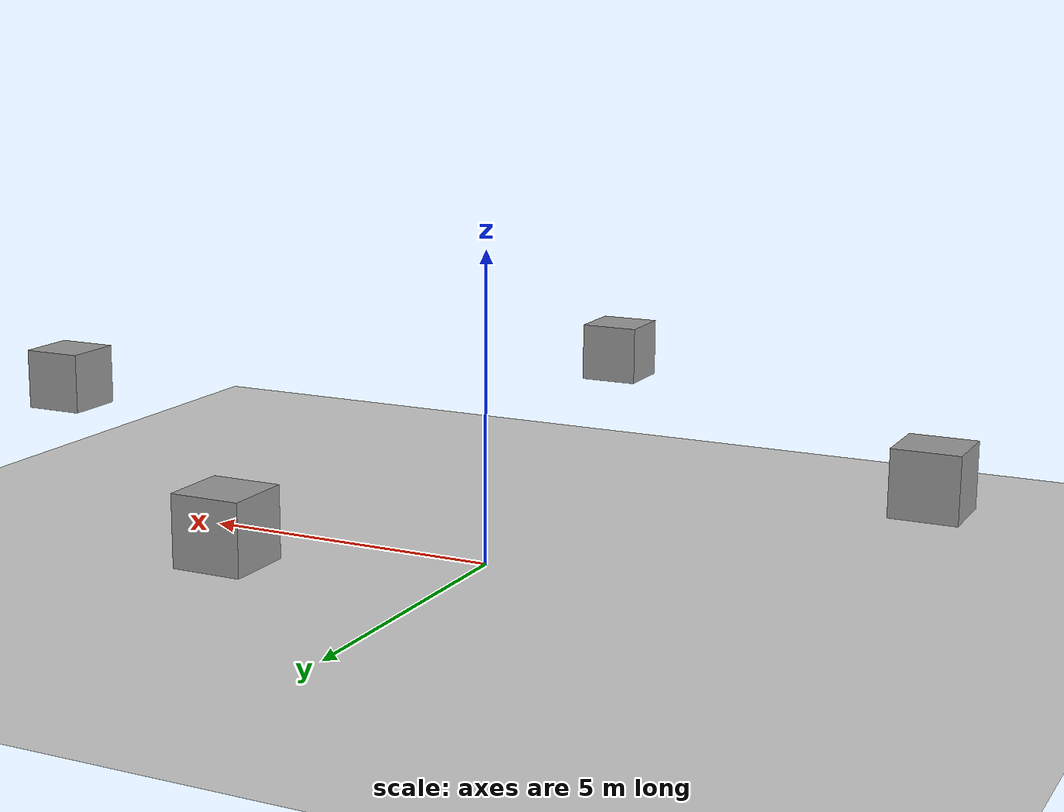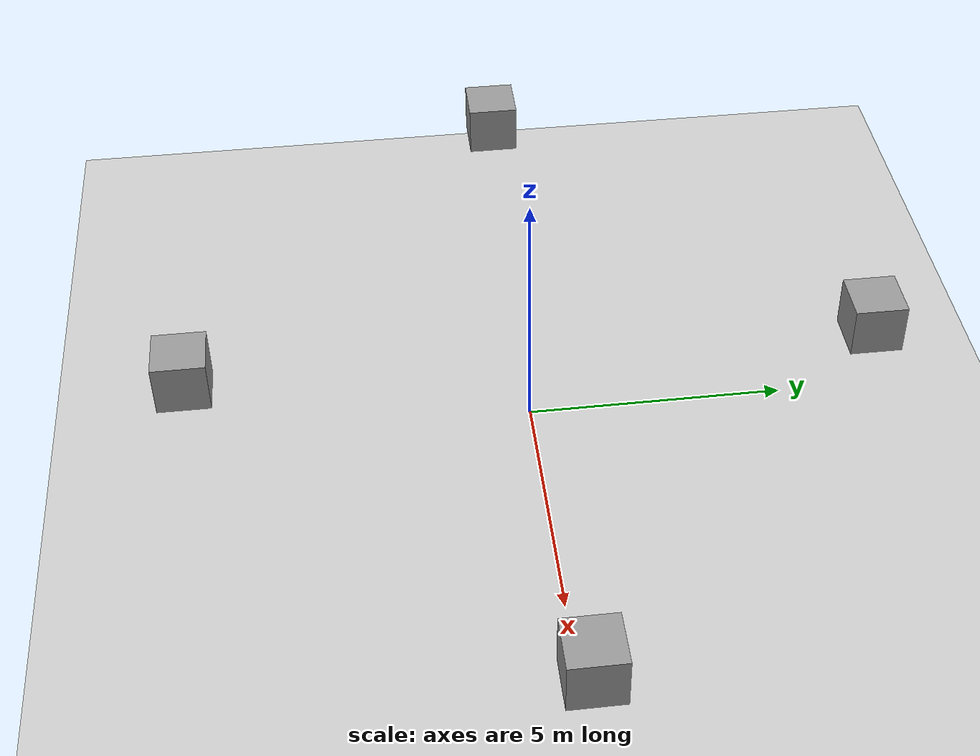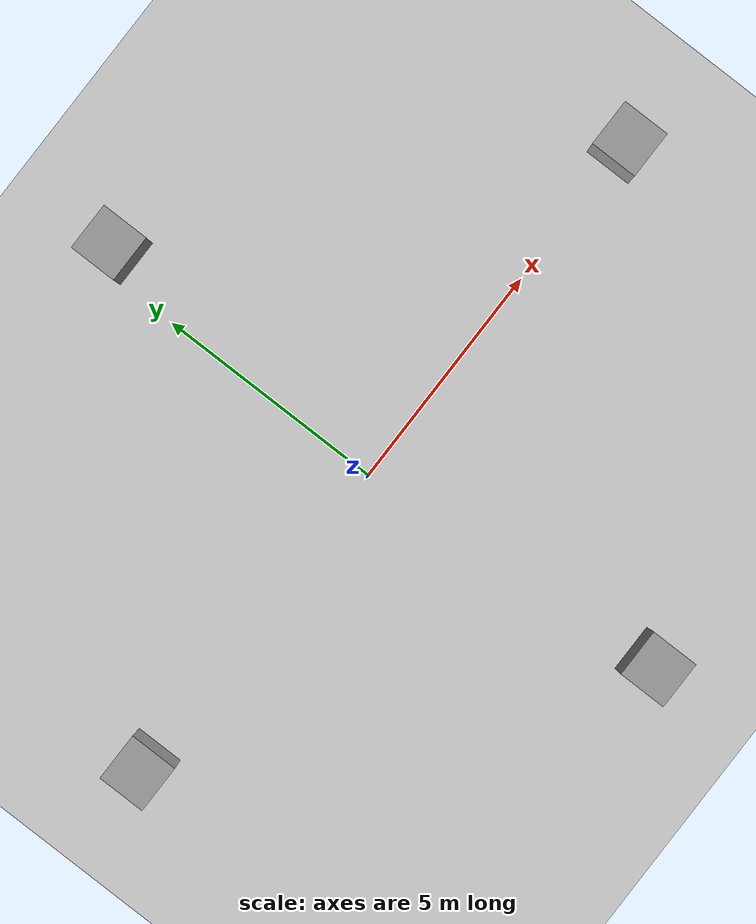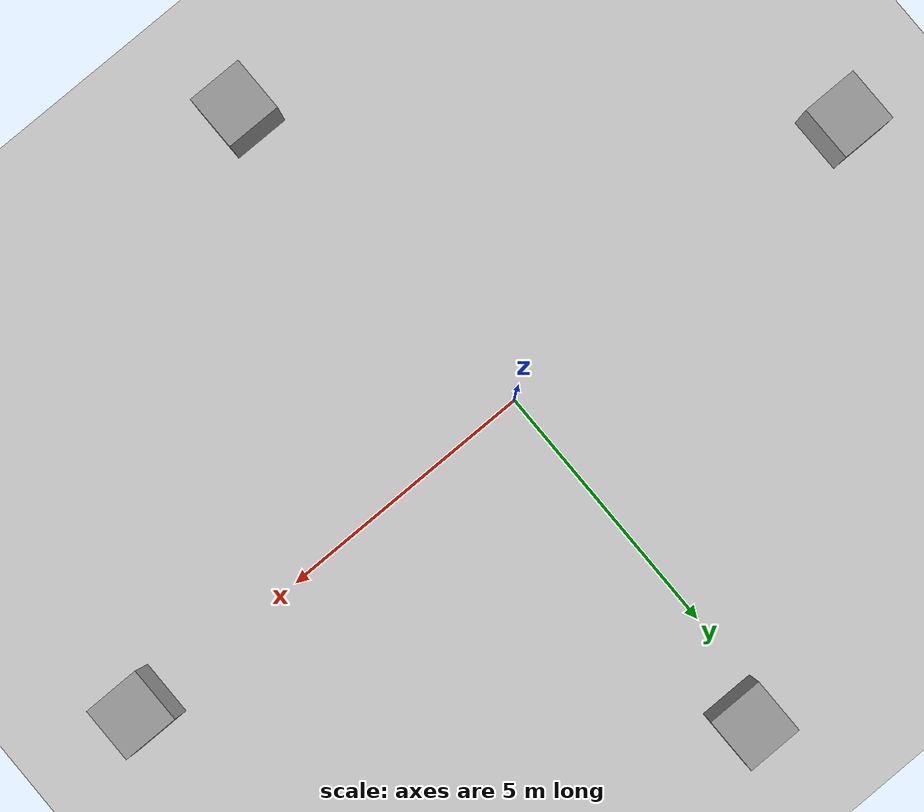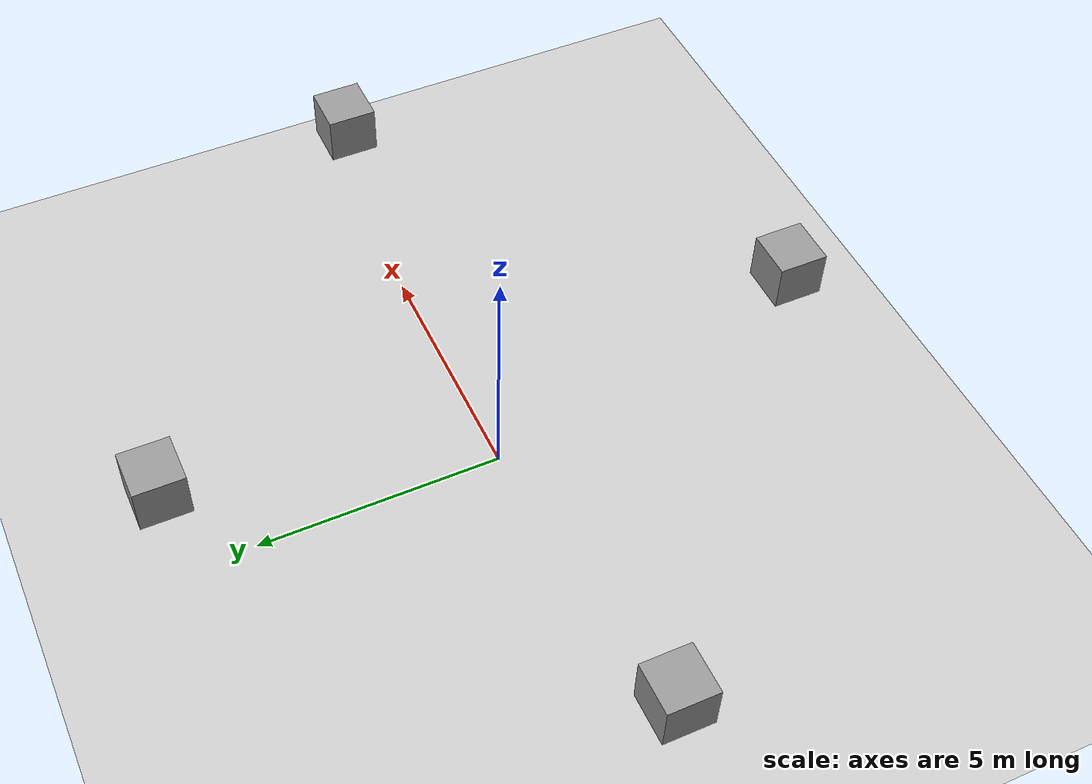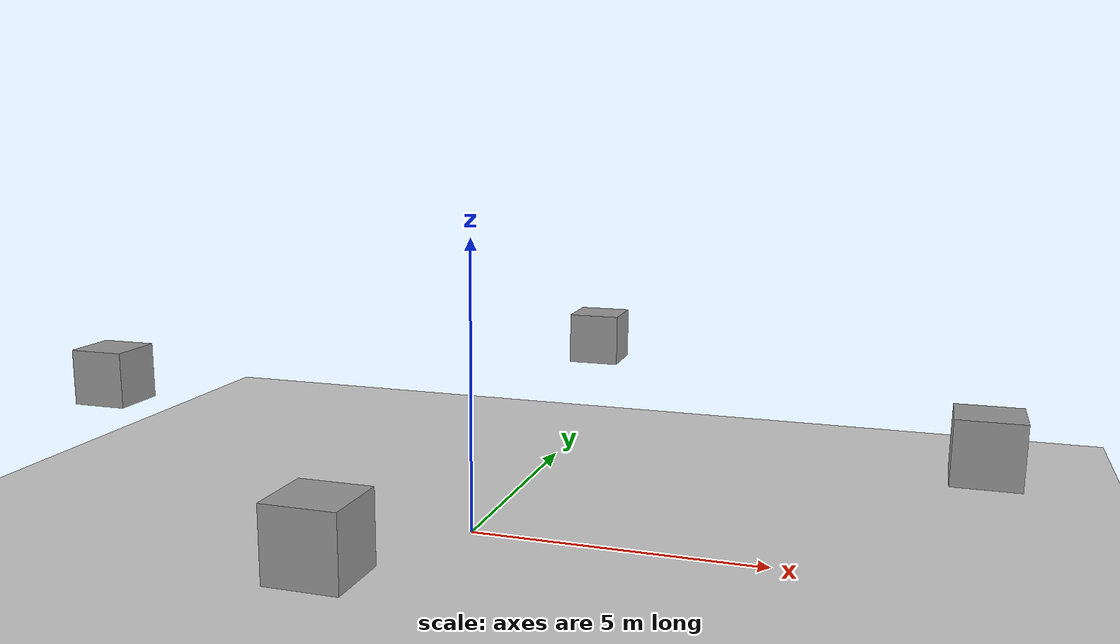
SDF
<sdf version='1.7'>
  <world name='default'>
    <!-- Restaurant Challenge 用の最小ワールド (壁なし・広い空間)        -->
    <!-- 机・椅子は configs/tasks/restaurant/placement.yaml の furniture:    -->
    <!-- セクションで「本物のメッシュ USD」として置く (furniture_spawn.py)。  -->
    <!-- このワールドは「床」だけを用意し、外壁は置かない (広い空間で使う)。   -->
    <!-- の広い床になる。robot/furniture/people は placement.yaml で配置する。 -->
    <light name='sun' type='directional'>
      <cast_shadows>1</cast_shadows>
      <pose>0 0 10 0 -0 0</pose>
      <diffuse>0.8 0.8 0.8 1</diffuse>
      <specular>0.2 0.2 0.2 1</specular>
      <attenuation>
        <range>1000</range>
        <constant>0.9</constant>
        <linear>0.01</linear>
        <quadratic>0.001</quadratic>
      </attenuation>
      <direction>-0.5 0.1 -0.9</direction>
      <spot>
        <inner_angle>0</inner_angle>
        <outer_angle>0</outer_angle>
        <falloff>0</falloff>
      </spot>
    </light>
    <model name='ground_plane'>
      <static>1</static>
      <link name='link'>
        <collision name='collision'>
          <geometry>
            <plane>
              <normal>0 0 1</normal>
              <size>100 100</size>
            </plane>
          </geometry>
          <surface>
            <contact>
              <collide_bitmask>65535</collide_bitmask>
              <ode/>
            </contact>
            <friction>
              <ode>
                <mu>100</mu>
                <mu2>50</mu2>
              </ode>
              <torsional>
                <ode/>
              </torsional>
            </friction>
            <bounce/>
          </surface>
          <max_contacts>10</max_contacts>
        </collision>
        <visual name='visual'>
          <cast_shadows>0</cast_shadows>
          <geometry>
            <plane>
              <normal>0 0 1</normal>
              <size>100 100</size>
            </plane>
          </geometry>
          <material>
            <script>
              <uri>file://media/materials/scripts/gazebo.material</uri>
              <name>Gazebo/Grey</name>
            </script>
          </material>
        </visual>
        <self_collide>0</self_collide>
        <enable_wind>0</enable_wind>
        <kinematic>0</kinematic>
      </link>
    </model>
    <gravity>0 0 -9.8</gravity>
    <magnetic_field>6e-06 2.3e-05 -4.2e-05</magnetic_field>
    <atmosphere type='adiabatic'/>
    <physics type='ode'>
      <max_step_size>0.001</max_step_size>
      <real_time_factor>1</real_time_factor>
      <real_time_update_rate>1000</real_time_update_rate>
    </physics>
    <scene>
      <ambient>0.4 0.4 0.4 1</ambient>
      <background>0.7 0.7 0.7 1</background>
      <shadows>1</shadows>
    </scene>
    <wind/>
    <spherical_coordinates>
      <surface_model>EARTH_WGS84</surface_model>
      <latitude_deg>0</latitude_deg>
      <longitude_deg>0</longitude_deg>
      <elevation>0</elevation>
      <heading_deg>0</heading_deg>
    </spherical_coordinates>
    <gui fullscreen='0'>
      <camera name='user_camera'>
        <pose>-3.0 0.0 6.0 0 1.2 0</pose>
        <view_controller>orbit</view_controller>
        <projection_type>perspective</projection_type>
      </camera>
    </gui>

    <!-- 外壁 (高さ4.5m,厚さ0.1m)。自己位置推定用に4辺を囲う。部屋: X=-7〜8, Y=-6.5〜6.5。 -->
    <!-- 高さを変えるとき: pose の3番目(中心Z=高さの半分)と scale の3番目(高さ)を一緒に直す。 -->
    <include><uri>model://unit_box</uri><name>wall_north</name><pose>0.5 6.5 2.25 0 0 0</pose><scale>15.0 0.1 4.5</scale></include>
    <include><uri>model://unit_box</uri><name>wall_south</name><pose>0.5 -6.5 2.25 0 0 0</pose><scale>15.0 0.1 4.5</scale></include>
    <include><uri>model://unit_box</uri><name>wall_east</name><pose>8.0 0.0 2.25 0 0 0</pose><scale>0.1 13.0 4.5</scale></include>
    <include><uri>model://unit_box</uri><name>wall_west</name><pose>-7.0 0.0 2.25 0 0 0</pose><scale>0.1 13.0 4.5</scale></include>
  </world>
</sdf>

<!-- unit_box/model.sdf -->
<sdf version='1.7'>
  <model name='unit_box'>
    <link name='link'>
      <inertial>
        <mass>1</mass>
        <inertia>
          <ixx>0.166667</ixx>
          <ixy>0</ixy>
          <ixz>0</ixz>
          <iyy>0.166667</iyy>
          <iyz>0</iyz>
          <izz>0.166667</izz>
        </inertia>
        <pose>0 0 0 0 -0 0</pose>
      </inertial>
      <self_collide>0</self_collide>
      <enable_wind>0</enable_wind>
      <pose>0 0 0 0 -0 0</pose>
      <gravity>1</gravity>
      <kinematic>0</kinematic>
      <visual name='visual'>
        <geometry>
          <box>
            <size>1 1 1</size>
          </box>
        </geometry>
        <material>
          <script>
            <name>Gazebo/Grey</name>
            <uri>file://media/materials/scripts/gazebo.material</uri>
          </script>
          <shader type='pixel'>
            <normal_map>__default__</normal_map>
          </shader>
          <ambient>0.8 0.8 0.8 1</ambient>
          <diffuse>0.7 0.7 0.7 1</diffuse>
          <specular>0.01 0.01 0.01 1</specular>
          <emissive>0 0 0 1</emissive>
        </material>
        <pose>0 0 0 0 -0 0</pose>
        <transparency>0</transparency>
        <cast_shadows>1</cast_shadows>
      </visual>
      <collision name='collision'>
        <laser_retro>0</laser_retro>
        <max_contacts>10</max_contacts>
        <pose>0 0 0 0 -0 0</pose>
        <geometry>
          <box>
            <size>1 1 1</size>
          </box>
        </geometry>
        <surface>
          <friction>
            <ode>
              <mu>1</mu>
              <mu2>1</mu2>
              <fdir1>0 0 0</fdir1>
              <slip1>0</slip1>
              <slip2>0</slip2>
            </ode>
            <torsional>
              <coefficient>1</coefficient>
              <patch_radius>0</patch_radius>
              <surface_radius>0</surface_radius>
              <use_patch_radius>1</use_patch_radius>
              <ode>
                <slip>0</slip>
              </ode>
            </torsional>
          </friction>
          <bounce>
            <restitution_coefficient>0</restitution_coefficient>
            <threshold>1e+06</threshold>
          </bounce>
          <contact>
            <collide_without_contact>0</collide_without_contact>
            <collide_without_contact_bitmask>1</collide_without_contact_bitmask>
            <collide_bitmask>1</collide_bitmask>
            <ode>
              <soft_cfm>0</soft_cfm>
              <soft_erp>0.2</soft_erp>
              <kp>1e+13</kp>
              <kd>1</kd>
              <max_vel>0.01</max_vel>
              <min_depth>0</min_depth>
            </ode>
            <bullet>
              <split_impulse>1</split_impulse>
              <split_impulse_penetration_threshold>-0.01</split_impulse_penetration_threshold>
              <soft_cfm>0</soft_cfm>
              <soft_erp>0.2</soft_erp>
              <kp>1e+13</kp>
              <kd>1</kd>
            </bullet>
          </contact>
        </surface>
      </collision>
    </link>
    <static>0</static>
    <allow_auto_disable>1</allow_auto_disable>
  </model>
</sdf>
